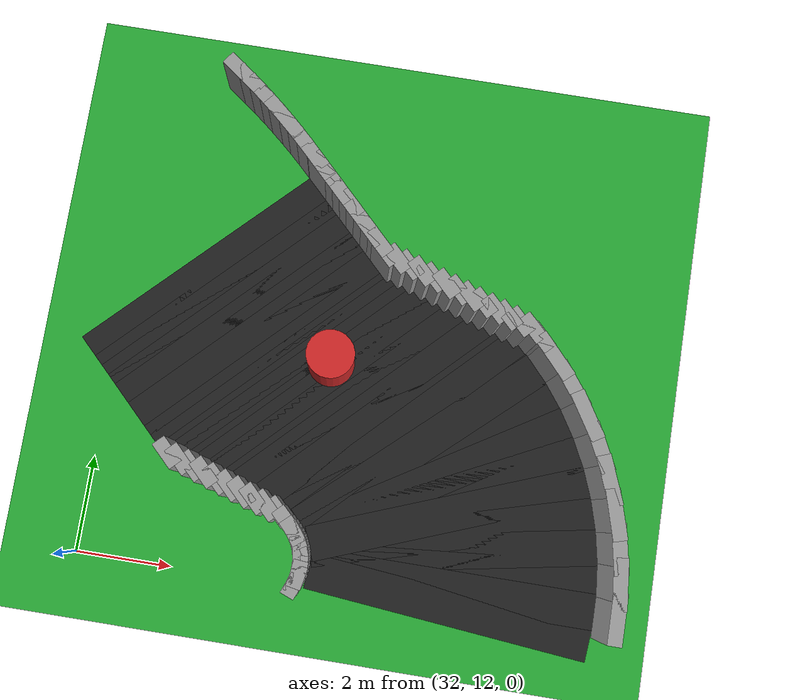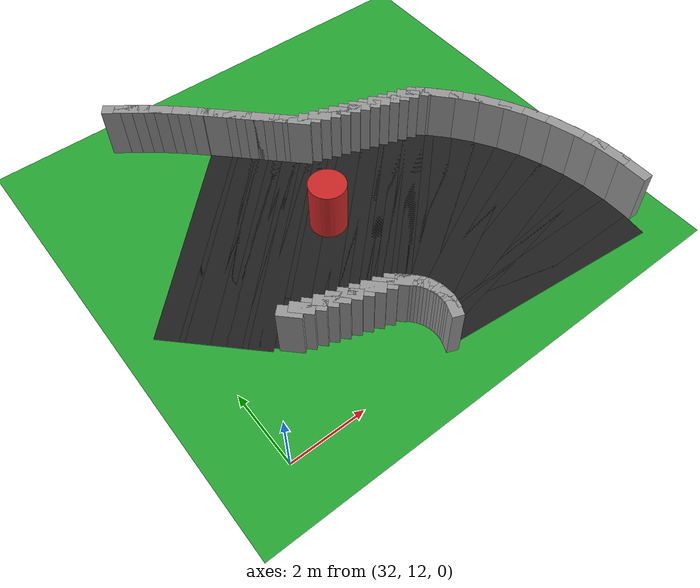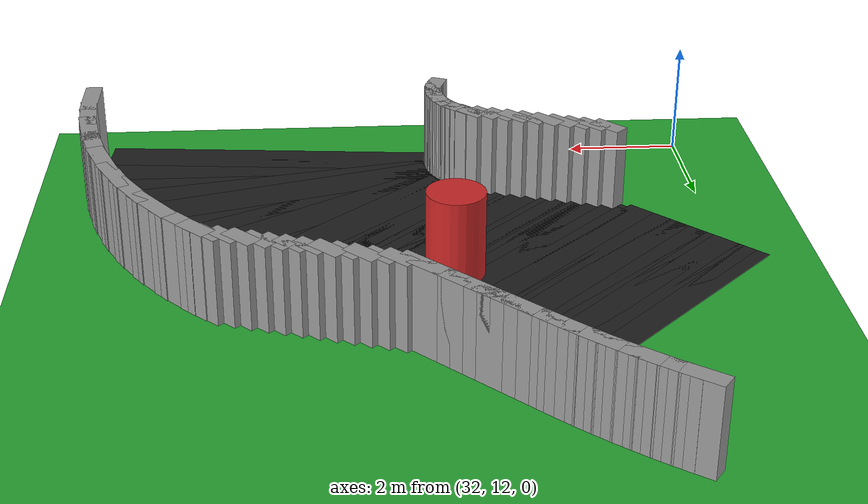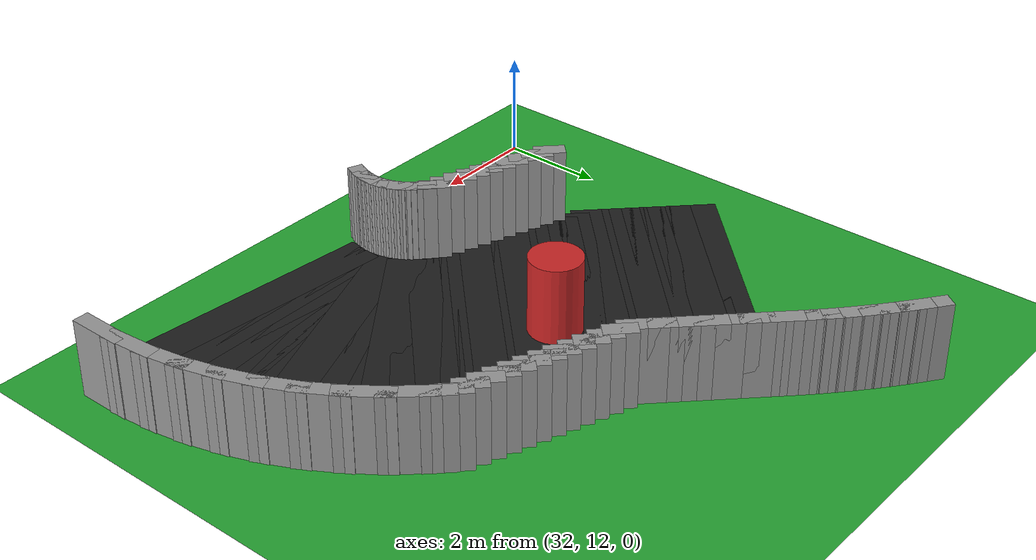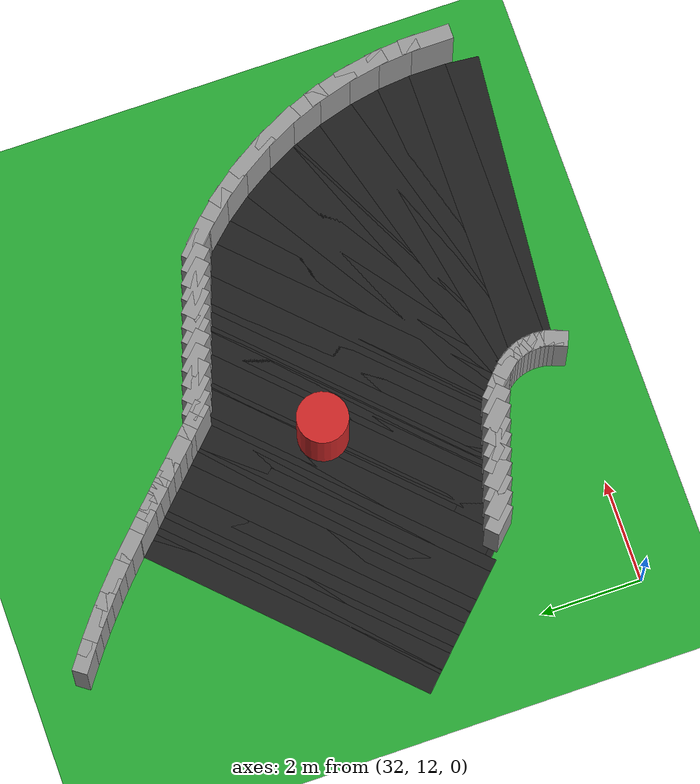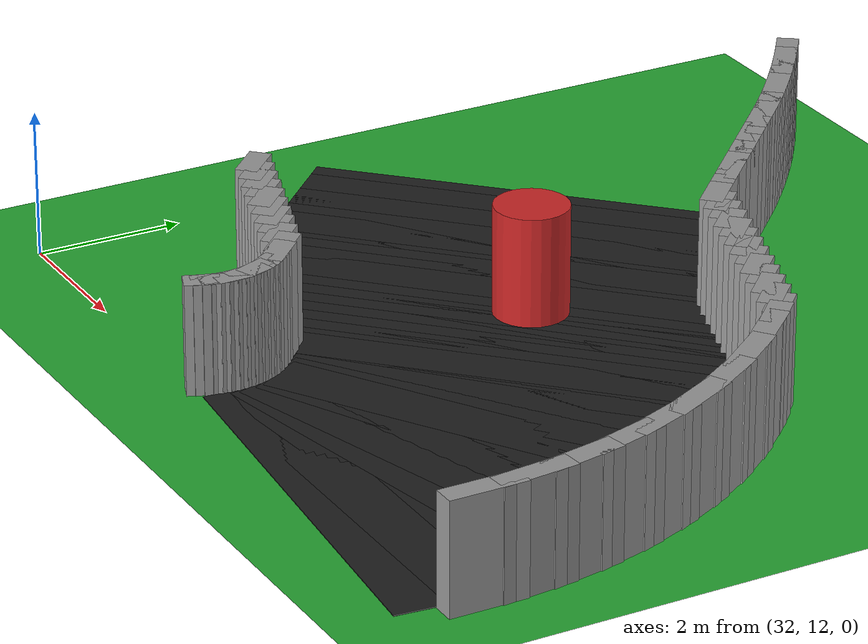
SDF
<sdf version="1.6">
 <world name="obstacle_asymturn">
  <include><uri>model://sun</uri></include>
  <model name="ground_plane">
   <static>true</static>
   <link name="link">
    <collision name="collision">
     <surface><friction><ode><mu>100</mu><mu2>50</mu2></ode></friction></surface>
     <geometry><plane><normal>0 0 1</normal><size>120 120</size></plane></geometry>
    </collision>
    <visual name="visual">
     <geometry><plane><normal>0 0 1</normal><size>120 120</size></plane></geometry>
     <material>
      <script><uri>file://media/materials/scripts/gazebo.material</uri><name>Gazebo/Green</name></script>
     </material>
    </visual>
   </link>
  </model>
  <model name="curbL_170">
   <static>true</static>
   <pose>36.626 12.116 0.750 0 0 1.20120</pose>
   <link name="link">
    <collision name="collision"><geometry><box><size>0.457 0.300 1.500</size></box></geometry></collision>
    <visual name="visual">
     <geometry><box><size>0.457 0.300 1.500</size></box></geometry>
     <material>
      <script><uri>file://media/materials/scripts/gazebo.material</uri><name>Gazebo/Grey</name></script>
     </material>
    </visual>
   </link>
  </model>
  <model name="curbL_171">
   <static>true</static>
   <pose>36.656 12.208 0.750 0 0 1.29360</pose>
   <link name="link">
    <collision name="collision"><geometry><box><size>0.457 0.300 1.500</size></box></geometry></collision>
    <visual name="visual">
     <geometry><box><size>0.457 0.300 1.500</size></box></geometry>
     <material>
      <script><uri>file://media/materials/scripts/gazebo.material</uri><name>Gazebo/Grey</name></script>
     </material>
    </visual>
   </link>
  </model>
  <model name="curbL_172">
   <static>true</static>
   <pose>36.679 12.303 0.750 0 0 1.38600</pose>
   <link name="link">
    <collision name="collision"><geometry><box><size>0.457 0.300 1.500</size></box></geometry></collision>
    <visual name="visual">
     <geometry><box><size>0.457 0.300 1.500</size></box></geometry>
     <material>
      <script><uri>file://media/materials/scripts/gazebo.material</uri><name>Gazebo/Grey</name></script>
     </material>
    </visual>
   </link>
  </model>
  <model name="asphalt_173">
   <static>true</static>
   <pose>39.825 12.109 0.005 0 0 1.47840</pose>
   <link name="link">
    <visual name="visual">
     <geometry><box><size>0.748 6.000 0.010</size></box></geometry>
     <material>
      <script><uri>file://media/materials/scripts/gazebo.material</uri><name>Gazebo/Black</name></script>
     </material>
    </visual>
   </link>
  </model>
  <model name="curbL_173">
   <static>true</static>
   <pose>36.692 12.399 0.750 0 0 1.47840</pose>
   <link name="link">
    <collision name="collision"><geometry><box><size>0.457 0.300 1.500</size></box></geometry></collision>
    <visual name="visual">
     <geometry><box><size>0.457 0.300 1.500</size></box></geometry>
     <material>
      <script><uri>file://media/materials/scripts/gazebo.material</uri><name>Gazebo/Grey</name></script>
     </material>
    </visual>
   </link>
  </model>
  <model name="asphalt_174">
   <static>true</static>
   <pose>39.843 12.496 0.005 0 0 1.57080</pose>
   <link name="link">
    <visual name="visual">
     <geometry><box><size>0.748 6.000 0.010</size></box></geometry>
     <material>
      <script><uri>file://media/materials/scripts/gazebo.material</uri><name>Gazebo/Black</name></script>
     </material>
    </visual>
   </link>
  </model>
  <model name="curbL_174">
   <static>true</static>
   <pose>36.696 12.496 0.750 0 0 1.57080</pose>
   <link name="link">
    <collision name="collision"><geometry><box><size>0.457 0.300 1.500</size></box></geometry></collision>
    <visual name="visual">
     <geometry><box><size>0.457 0.300 1.500</size></box></geometry>
     <material>
      <script><uri>file://media/materials/scripts/gazebo.material</uri><name>Gazebo/Grey</name></script>
     </material>
    </visual>
   </link>
  </model>
  <model name="curbR_174">
   <static>true</static>
   <pose>42.990 12.496 0.750 0 0 1.57080</pose>
   <link name="link">
    <collision name="collision"><geometry><box><size>1.039 0.300 1.500</size></box></geometry></collision>
    <visual name="visual">
     <geometry><box><size>1.039 0.300 1.500</size></box></geometry>
     <material>
      <script><uri>file://media/materials/scripts/gazebo.material</uri><name>Gazebo/Grey</name></script>
     </material>
    </visual>
   </link>
  </model>
  <model name="asphalt_175">
   <static>true</static>
   <pose>39.825 12.883 0.005 0 0 1.66320</pose>
   <link name="link">
    <visual name="visual">
     <geometry><box><size>0.748 6.000 0.010</size></box></geometry>
     <material>
      <script><uri>file://media/materials/scripts/gazebo.material</uri><name>Gazebo/Black</name></script>
     </material>
    </visual>
   </link>
  </model>
  <model name="curbL_175">
   <static>true</static>
   <pose>36.692 12.593 0.750 0 0 1.66320</pose>
   <link name="link">
    <collision name="collision"><geometry><box><size>0.457 0.300 1.500</size></box></geometry></collision>
    <visual name="visual">
     <geometry><box><size>0.457 0.300 1.500</size></box></geometry>
     <material>
      <script><uri>file://media/materials/scripts/gazebo.material</uri><name>Gazebo/Grey</name></script>
     </material>
    </visual>
   </link>
  </model>
  <model name="curbR_175">
   <static>true</static>
   <pose>42.958 13.173 0.750 0 0 1.66320</pose>
   <link name="link">
    <collision name="collision"><geometry><box><size>1.039 0.300 1.500</size></box></geometry></collision>
    <visual name="visual">
     <geometry><box><size>1.039 0.300 1.500</size></box></geometry>
     <material>
      <script><uri>file://media/materials/scripts/gazebo.material</uri><name>Gazebo/Grey</name></script>
     </material>
    </visual>
   </link>
  </model>
  <model name="asphalt_176">
   <static>true</static>
   <pose>39.772 13.267 0.005 0 0 1.75560</pose>
   <link name="link">
    <visual name="visual">
     <geometry><box><size>0.748 6.000 0.010</size></box></geometry>
     <material>
      <script><uri>file://media/materials/scripts/gazebo.material</uri><name>Gazebo/Black</name></script>
     </material>
    </visual>
   </link>
  </model>
  <model name="curbL_176">
   <static>true</static>
   <pose>36.679 12.689 0.750 0 0 1.75560</pose>
   <link name="link">
    <collision name="collision"><geometry><box><size>0.457 0.300 1.500</size></box></geometry></collision>
    <visual name="visual">
     <geometry><box><size>0.457 0.300 1.500</size></box></geometry>
     <material>
      <script><uri>file://media/materials/scripts/gazebo.material</uri><name>Gazebo/Grey</name></script>
     </material>
    </visual>
   </link>
  </model>
  <model name="curbR_176">
   <static>true</static>
   <pose>42.865 13.845 0.750 0 0 1.75560</pose>
   <link name="link">
    <collision name="collision"><geometry><box><size>1.039 0.300 1.500</size></box></geometry></collision>
    <visual name="visual">
     <geometry><box><size>1.039 0.300 1.500</size></box></geometry>
     <material>
      <script><uri>file://media/materials/scripts/gazebo.material</uri><name>Gazebo/Grey</name></script>
     </material>
    </visual>
   </link>
  </model>
  <model name="asphalt_177">
   <static>true</static>
   <pose>39.683 13.644 0.005 0 0 1.84800</pose>
   <link name="link">
    <visual name="visual">
     <geometry><box><size>0.748 6.000 0.010</size></box></geometry>
     <material>
      <script><uri>file://media/materials/scripts/gazebo.material</uri><name>Gazebo/Black</name></script>
     </material>
    </visual>
   </link>
  </model>
  <model name="curbL_177">
   <static>true</static>
   <pose>36.656 12.783 0.750 0 0 1.84800</pose>
   <link name="link">
    <collision name="collision"><geometry><box><size>0.457 0.300 1.500</size></box></geometry></collision>
    <visual name="visual">
     <geometry><box><size>0.457 0.300 1.500</size></box></geometry>
     <material>
      <script><uri>file://media/materials/scripts/gazebo.material</uri><name>Gazebo/Grey</name></script>
     </material>
    </visual>
   </link>
  </model>
  <model name="curbR_177">
   <static>true</static>
   <pose>42.709 14.505 0.750 0 0 1.84800</pose>
   <link name="link">
    <collision name="collision"><geometry><box><size>1.039 0.300 1.500</size></box></geometry></collision>
    <visual name="visual">
     <geometry><box><size>1.039 0.300 1.500</size></box></geometry>
     <material>
      <script><uri>file://media/materials/scripts/gazebo.material</uri><name>Gazebo/Grey</name></script>
     </material>
    </visual>
   </link>
  </model>
  <model name="asphalt_178">
   <static>true</static>
   <pose>39.560 14.012 0.005 0 0 1.94040</pose>
   <link name="link">
    <visual name="visual">
     <geometry><box><size>0.748 6.000 0.010</size></box></geometry>
     <material>
      <script><uri>file://media/materials/scripts/gazebo.material</uri><name>Gazebo/Black</name></script>
     </material>
    </visual>
   </link>
  </model>
  <model name="curbL_178">
   <static>true</static>
   <pose>36.626 12.875 0.750 0 0 1.94040</pose>
   <link name="link">
    <collision name="collision"><geometry><box><size>0.457 0.300 1.500</size></box></geometry></collision>
    <visual name="visual">
     <geometry><box><size>0.457 0.300 1.500</size></box></geometry>
     <material>
      <script><uri>file://media/materials/scripts/gazebo.material</uri><name>Gazebo/Grey</name></script>
     </material>
    </visual>
   </link>
  </model>
  <model name="curbR_178">
   <static>true</static>
   <pose>42.494 15.148 0.750 0 0 1.94040</pose>
   <link name="link">
    <collision name="collision"><geometry><box><size>1.039 0.300 1.500</size></box></geometry></collision>
    <visual name="visual">
     <geometry><box><size>1.039 0.300 1.500</size></box></geometry>
     <material>
      <script><uri>file://media/materials/scripts/gazebo.material</uri><name>Gazebo/Grey</name></script>
     </material>
    </visual>
   </link>
  </model>
  <model name="asphalt_179">
   <static>true</static>
   <pose>39.403 14.366 0.005 0 0 2.03280</pose>
   <link name="link">
    <visual name="visual">
     <geometry><box><size>0.748 6.000 0.010</size></box></geometry>
     <material>
      <script><uri>file://media/materials/scripts/gazebo.material</uri><name>Gazebo/Black</name></script>
     </material>
    </visual>
   </link>
  </model>
  <model name="curbL_179">
   <static>true</static>
   <pose>36.586 12.964 0.750 0 0 2.03280</pose>
   <link name="link">
    <collision name="collision"><geometry><box><size>0.457 0.300 1.500</size></box></geometry></collision>
    <visual name="visual">
     <geometry><box><size>0.457 0.300 1.500</size></box></geometry>
     <material>
      <script><uri>file://media/materials/scripts/gazebo.material</uri><name>Gazebo/Grey</name></script>
     </material>
    </visual>
   </link>
  </model>
  <model name="curbR_179">
   <static>true</static>
   <pose>42.220 15.769 0.750 0 0 2.03280</pose>
   <link name="link">
    <collision name="collision"><geometry><box><size>1.039 0.300 1.500</size></box></geometry></collision>
    <visual name="visual">
     <geometry><box><size>1.039 0.300 1.500</size></box></geometry>
     <material>
      <script><uri>file://media/materials/scripts/gazebo.material</uri><name>Gazebo/Grey</name></script>
     </material>
    </visual>
   </link>
  </model>
  <model name="asphalt_180">
   <static>true</static>
   <pose>39.215 14.705 0.005 0 0 2.12520</pose>
   <link name="link">
    <visual name="visual">
     <geometry><box><size>0.748 6.000 0.010</size></box></geometry>
     <material>
      <script><uri>file://media/materials/scripts/gazebo.material</uri><name>Gazebo/Black</name></script>
     </material>
    </visual>
   </link>
  </model>
  <model name="curbL_180">
   <static>true</static>
   <pose>36.539 13.048 0.750 0 0 2.12520</pose>
   <link name="link">
    <collision name="collision"><geometry><box><size>0.457 0.300 1.500</size></box></geometry></collision>
    <visual name="visual">
     <geometry><box><size>0.457 0.300 1.500</size></box></geometry>
     <material>
      <script><uri>file://media/materials/scripts/gazebo.material</uri><name>Gazebo/Grey</name></script>
     </material>
    </visual>
   </link>
  </model>
  <model name="curbR_180">
   <static>true</static>
   <pose>41.890 16.361 0.750 0 0 2.12520</pose>
   <link name="link">
    <collision name="collision"><geometry><box><size>1.039 0.300 1.500</size></box></geometry></collision>
    <visual name="visual">
     <geometry><box><size>1.039 0.300 1.500</size></box></geometry>
     <material>
      <script><uri>file://media/materials/scripts/gazebo.material</uri><name>Gazebo/Grey</name></script>
     </material>
    </visual>
   </link>
  </model>
  <model name="asphalt_181">
   <static>true</static>
   <pose>38.995 15.025 0.005 0 0 2.21759</pose>
   <link name="link">
    <visual name="visual">
     <geometry><box><size>0.748 6.000 0.010</size></box></geometry>
     <material>
      <script><uri>file://media/materials/scripts/gazebo.material</uri><name>Gazebo/Black</name></script>
     </material>
    </visual>
   </link>
  </model>
  <model name="curbL_181">
   <static>true</static>
   <pose>36.484 13.128 0.750 0 0 2.21759</pose>
   <link name="link">
    <collision name="collision"><geometry><box><size>0.457 0.300 1.500</size></box></geometry></collision>
    <visual name="visual">
     <geometry><box><size>0.457 0.300 1.500</size></box></geometry>
     <material>
      <script><uri>file://media/materials/scripts/gazebo.material</uri><name>Gazebo/Grey</name></script>
     </material>
    </visual>
   </link>
  </model>
  <model name="curbR_181">
   <static>true</static>
   <pose>41.507 16.921 0.750 0 0 2.21759</pose>
   <link name="link">
    <collision name="collision"><geometry><box><size>1.039 0.300 1.500</size></box></geometry></collision>
    <visual name="visual">
     <geometry><box><size>1.039 0.300 1.500</size></box></geometry>
     <material>
      <script><uri>file://media/materials/scripts/gazebo.material</uri><name>Gazebo/Grey</name></script>
     </material>
    </visual>
   </link>
  </model>
  <model name="asphalt_182">
   <static>true</static>
   <pose>38.748 15.323 0.005 0 0 2.30999</pose>
   <link name="link">
    <visual name="visual">
     <geometry><box><size>0.748 6.000 0.010</size></box></geometry>
     <material>
      <script><uri>file://media/materials/scripts/gazebo.material</uri><name>Gazebo/Black</name></script>
     </material>
    </visual>
   </link>
  </model>
  <model name="curbL_182">
   <static>true</static>
   <pose>36.422 13.203 0.750 0 0 2.30999</pose>
   <link name="link">
    <collision name="collision"><geometry><box><size>0.457 0.300 1.500</size></box></geometry></collision>
    <visual name="visual">
     <geometry><box><size>0.457 0.300 1.500</size></box></geometry>
     <material>
      <script><uri>file://media/materials/scripts/gazebo.material</uri><name>Gazebo/Grey</name></script>
     </material>
    </visual>
   </link>
  </model>
  <model name="curbR_182">
   <static>true</static>
   <pose>41.073 17.443 0.750 0 0 2.30999</pose>
   <link name="link">
    <collision name="collision"><geometry><box><size>1.039 0.300 1.500</size></box></geometry></collision>
    <visual name="visual">
     <geometry><box><size>1.039 0.300 1.500</size></box></geometry>
     <material>
      <script><uri>file://media/materials/scripts/gazebo.material</uri><name>Gazebo/Grey</name></script>
     </material>
    </visual>
   </link>
  </model>
  <model name="asphalt_183">
   <static>true</static>
   <pose>38.529 15.555 0.005 0 0 2.35619</pose>
   <link name="link">
    <visual name="visual">
     <geometry><box><size>0.610 6.000 0.010</size></box></geometry>
     <material>
      <script><uri>file://media/materials/scripts/gazebo.material</uri><name>Gazebo/Black</name></script>
     </material>
    </visual>
   </link>
  </model>
  <model name="curbL_183">
   <static>true</static>
   <pose>36.301 13.327 0.750 0 0 2.35619</pose>
   <link name="link">
    <collision name="collision"><geometry><box><size>0.610 0.300 1.500</size></box></geometry></collision>
    <visual name="visual">
     <geometry><box><size>0.610 0.300 1.500</size></box></geometry>
     <material>
      <script><uri>file://media/materials/scripts/gazebo.material</uri><name>Gazebo/Grey</name></script>
     </material>
    </visual>
   </link>
  </model>
  <model name="curbR_183">
   <static>true</static>
   <pose>40.756 17.782 0.750 0 0 2.35619</pose>
   <link name="link">
    <collision name="collision"><geometry><box><size>0.610 0.300 1.500</size></box></geometry></collision>
    <visual name="visual">
     <geometry><box><size>0.610 0.300 1.500</size></box></geometry>
     <material>
      <script><uri>file://media/materials/scripts/gazebo.material</uri><name>Gazebo/Grey</name></script>
     </material>
    </visual>
   </link>
  </model>
  <model name="asphalt_184">
   <static>true</static>
   <pose>38.338 15.717 0.005 0 0 2.35619</pose>
   <link name="link">
    <visual name="visual">
     <geometry><box><size>0.610 6.000 0.010</size></box></geometry>
     <material>
      <script><uri>file://media/materials/scripts/gazebo.material</uri><name>Gazebo/Black</name></script>
     </material>
    </visual>
   </link>
  </model>
  <model name="curbL_184">
   <static>true</static>
   <pose>36.110 13.490 0.750 0 0 2.35619</pose>
   <link name="link">
    <collision name="collision"><geometry><box><size>0.610 0.300 1.500</size></box></geometry></collision>
    <visual name="visual">
     <geometry><box><size>0.610 0.300 1.500</size></box></geometry>
     <material>
      <script><uri>file://media/materials/scripts/gazebo.material</uri><name>Gazebo/Grey</name></script>
     </material>
    </visual>
   </link>
  </model>
  <model name="curbR_184">
   <static>true</static>
   <pose>40.565 17.944 0.750 0 0 2.35619</pose>
   <link name="link">
    <collision name="collision"><geometry><box><size>0.610 0.300 1.500</size></box></geometry></collision>
    <visual name="visual">
     <geometry><box><size>0.610 0.300 1.500</size></box></geometry>
     <material>
      <script><uri>file://media/materials/scripts/gazebo.material</uri><name>Gazebo/Grey</name></script>
     </material>
    </visual>
   </link>
  </model>
  <model name="asphalt_185">
   <static>true</static>
   <pose>38.072 15.805 0.005 0 0 2.35619</pose>
   <link name="link">
    <visual name="visual">
     <geometry><box><size>0.610 6.000 0.010</size></box></geometry>
     <material>
      <script><uri>file://media/materials/scripts/gazebo.material</uri><name>Gazebo/Black</name></script>
     </material>
    </visual>
   </link>
  </model>
  <model name="curbL_185">
   <static>true</static>
   <pose>35.845 13.578 0.750 0 0 2.35619</pose>
   <link name="link">
    <collision name="collision"><geometry><box><size>0.610 0.300 1.500</size></box></geometry></collision>
    <visual name="visual">
     <geometry><box><size>0.610 0.300 1.500</size></box></geometry>
     <material>
      <script><uri>file://media/materials/scripts/gazebo.material</uri><name>Gazebo/Grey</name></script>
     </material>
    </visual>
   </link>
  </model>
  <model name="curbR_185">
   <static>true</static>
   <pose>40.300 18.033 0.750 0 0 2.35619</pose>
   <link name="link">
    <collision name="collision"><geometry><box><size>0.610 0.300 1.500</size></box></geometry></collision>
    <visual name="visual">
     <geometry><box><size>0.610 0.300 1.500</size></box></geometry>
     <material>
      <script><uri>file://media/materials/scripts/gazebo.material</uri><name>Gazebo/Grey</name></script>
     </material>
    </visual>
   </link>
  </model>
  <model name="asphalt_186">
   <static>true</static>
   <pose>37.807 15.894 0.005 0 0 2.35619</pose>
   <link name="link">
    <visual name="visual">
     <geometry><box><size>0.610 6.000 0.010</size></box></geometry>
     <material>
      <script><uri>file://media/materials/scripts/gazebo.material</uri><name>Gazebo/Black</name></script>
     </material>
    </visual>
   </link>
  </model>
  <model name="curbL_186">
   <static>true</static>
   <pose>35.580 13.666 0.750 0 0 2.35619</pose>
   <link name="link">
    <collision name="collision"><geometry><box><size>0.610 0.300 1.500</size></box></geometry></collision>
    <visual name="visual">
     <geometry><box><size>0.610 0.300 1.500</size></box></geometry>
     <material>
      <script><uri>file://media/materials/scripts/gazebo.material</uri><name>Gazebo/Grey</name></script>
     </material>
    </visual>
   </link>
  </model>
  <model name="curbR_186">
   <static>true</static>
   <pose>40.035 18.121 0.750 0 0 2.35619</pose>
   <link name="link">
    <collision name="collision"><geometry><box><size>0.610 0.300 1.500</size></box></geometry></collision>
    <visual name="visual">
     <geometry><box><size>0.610 0.300 1.500</size></box></geometry>
     <material>
      <script><uri>file://media/materials/scripts/gazebo.material</uri><name>Gazebo/Grey</name></script>
     </material>
    </visual>
   </link>
  </model>
  <model name="asphalt_187">
   <static>true</static>
   <pose>37.542 15.982 0.005 0 0 2.35619</pose>
   <link name="link">
    <visual name="visual">
     <geometry><box><size>0.610 6.000 0.010</size></box></geometry>
     <material>
      <script><uri>file://media/materials/scripts/gazebo.material</uri><name>Gazebo/Black</name></script>
     </material>
    </visual>
   </link>
  </model>
  <model name="curbL_187">
   <static>true</static>
   <pose>35.315 13.755 0.750 0 0 2.35619</pose>
   <link name="link">
    <collision name="collision"><geometry><box><size>0.610 0.300 1.500</size></box></geometry></collision>
    <visual name="visual">
     <geometry><box><size>0.610 0.300 1.500</size></box></geometry>
     <material>
      <script><uri>file://media/materials/scripts/gazebo.material</uri><name>Gazebo/Grey</name></script>
     </material>
    </visual>
   </link>
  </model>
  <model name="curbR_187">
   <static>true</static>
   <pose>39.769 18.209 0.750 0 0 2.35619</pose>
   <link name="link">
    <collision name="collision"><geometry><box><size>0.610 0.300 1.500</size></box></geometry></collision>
    <visual name="visual">
     <geometry><box><size>0.610 0.300 1.500</size></box></geometry>
     <material>
      <script><uri>file://media/materials/scripts/gazebo.material</uri><name>Gazebo/Grey</name></script>
     </material>
    </visual>
   </link>
  </model>
  <model name="asphalt_188">
   <static>true</static>
   <pose>37.277 16.070 0.005 0 0 2.35619</pose>
   <link name="link">
    <visual name="visual">
     <geometry><box><size>0.610 6.000 0.010</size></box></geometry>
     <material>
      <script><uri>file://media/materials/scripts/gazebo.material</uri><name>Gazebo/Black</name></script>
     </material>
    </visual>
   </link>
  </model>
  <model name="curbL_188">
   <static>true</static>
   <pose>35.049 13.843 0.750 0 0 2.35619</pose>
   <link name="link">
    <collision name="collision"><geometry><box><size>0.610 0.300 1.500</size></box></geometry></collision>
    <visual name="visual">
     <geometry><box><size>0.610 0.300 1.500</size></box></geometry>
     <material>
      <script><uri>file://media/materials/scripts/gazebo.material</uri><name>Gazebo/Grey</name></script>
     </material>
    </visual>
   </link>
  </model>
  <model name="curbR_188">
   <static>true</static>
   <pose>39.504 18.298 0.750 0 0 2.35619</pose>
   <link name="link">
    <collision name="collision"><geometry><box><size>0.610 0.300 1.500</size></box></geometry></collision>
    <visual name="visual">
     <geometry><box><size>0.610 0.300 1.500</size></box></geometry>
     <material>
      <script><uri>file://media/materials/scripts/gazebo.material</uri><name>Gazebo/Grey</name></script>
     </material>
    </visual>
   </link>
  </model>
  <model name="asphalt_189">
   <static>true</static>
   <pose>37.012 16.159 0.005 0 0 2.35619</pose>
   <link name="link">
    <visual name="visual">
     <geometry><box><size>0.610 6.000 0.010</size></box></geometry>
     <material>
      <script><uri>file://media/materials/scripts/gazebo.material</uri><name>Gazebo/Black</name></script>
     </material>
    </visual>
   </link>
  </model>
  <model name="curbL_189">
   <static>true</static>
   <pose>34.784 13.931 0.750 0 0 2.35619</pose>
   <link name="link">
    <collision name="collision"><geometry><box><size>0.610 0.300 1.500</size></box></geometry></collision>
    <visual name="visual">
     <geometry><box><size>0.610 0.300 1.500</size></box></geometry>
     <material>
      <script><uri>file://media/materials/scripts/gazebo.material</uri><name>Gazebo/Grey</name></script>
     </material>
    </visual>
   </link>
  </model>
  <model name="curbR_189">
   <static>true</static>
   <pose>39.239 18.386 0.750 0 0 2.35619</pose>
   <link name="link">
    <collision name="collision"><geometry><box><size>0.610 0.300 1.500</size></box></geometry></collision>
    <visual name="visual">
     <geometry><box><size>0.610 0.300 1.500</size></box></geometry>
     <material>
      <script><uri>file://media/materials/scripts/gazebo.material</uri><name>Gazebo/Grey</name></script>
     </material>
    </visual>
   </link>
  </model>
  <model name="asphalt_190">
   <static>true</static>
   <pose>36.747 16.247 0.005 0 0 2.35619</pose>
   <link name="link">
    <visual name="visual">
     <geometry><box><size>0.610 6.000 0.010</size></box></geometry>
     <material>
      <script><uri>file://media/materials/scripts/gazebo.material</uri><name>Gazebo/Black</name></script>
     </material>
    </visual>
   </link>
  </model>
  <model name="curbL_190">
   <static>true</static>
   <pose>34.519 14.020 0.750 0 0 2.35619</pose>
   <link name="link">
    <collision name="collision"><geometry><box><size>0.610 0.300 1.500</size></box></geometry></collision>
    <visual name="visual">
     <geometry><box><size>0.610 0.300 1.500</size></box></geometry>
     <material>
      <script><uri>file://media/materials/scripts/gazebo.material</uri><name>Gazebo/Grey</name></script>
     </material>
    </visual>
   </link>
  </model>
  <model name="curbR_190">
   <static>true</static>
   <pose>38.974 18.475 0.750 0 0 2.35619</pose>
   <link name="link">
    <collision name="collision"><geometry><box><size>0.610 0.300 1.500</size></box></geometry></collision>
    <visual name="visual">
     <geometry><box><size>0.610 0.300 1.500</size></box></geometry>
     <material>
      <script><uri>file://media/materials/scripts/gazebo.material</uri><name>Gazebo/Grey</name></script>
     </material>
    </visual>
   </link>
  </model>
  <model name="asphalt_191">
   <static>true</static>
   <pose>36.481 16.336 0.005 0 0 2.35619</pose>
   <link name="link">
    <visual name="visual">
     <geometry><box><size>0.610 6.000 0.010</size></box></geometry>
     <material>
      <script><uri>file://media/materials/scripts/gazebo.material</uri><name>Gazebo/Black</name></script>
     </material>
    </visual>
   </link>
  </model>
  <model name="curbL_191">
   <static>true</static>
   <pose>34.254 14.108 0.750 0 0 2.35619</pose>
   <link name="link">
    <collision name="collision"><geometry><box><size>0.610 0.300 1.500</size></box></geometry></collision>
    <visual name="visual">
     <geometry><box><size>0.610 0.300 1.500</size></box></geometry>
     <material>
      <script><uri>file://media/materials/scripts/gazebo.material</uri><name>Gazebo/Grey</name></script>
     </material>
    </visual>
   </link>
  </model>
  <model name="curbR_191">
   <static>true</static>
   <pose>38.709 18.563 0.750 0 0 2.35619</pose>
   <link name="link">
    <collision name="collision"><geometry><box><size>0.610 0.300 1.500</size></box></geometry></collision>
    <visual name="visual">
     <geometry><box><size>0.610 0.300 1.500</size></box></geometry>
     <material>
      <script><uri>file://media/materials/scripts/gazebo.material</uri><name>Gazebo/Grey</name></script>
     </material>
    </visual>
   </link>
  </model>
  <model name="asphalt_192">
   <static>true</static>
   <pose>36.216 16.424 0.005 0 0 2.35619</pose>
   <link name="link">
    <visual name="visual">
     <geometry><box><size>0.610 6.000 0.010</size></box></geometry>
     <material>
      <script><uri>file://media/materials/scripts/gazebo.material</uri><name>Gazebo/Black</name></script>
     </material>
    </visual>
   </link>
  </model>
  <model name="curbL_192">
   <static>true</static>
   <pose>33.989 14.197 0.750 0 0 2.35619</pose>
   <link name="link">
    <collision name="collision"><geometry><box><size>0.610 0.300 1.500</size></box></geometry></collision>
    <visual name="visual">
     <geometry><box><size>0.610 0.300 1.500</size></box></geometry>
     <material>
      <script><uri>file://media/materials/scripts/gazebo.material</uri><name>Gazebo/Grey</name></script>
     </material>
    </visual>
   </link>
  </model>
  <model name="curbR_192">
   <static>true</static>
   <pose>38.444 18.651 0.750 0 0 2.35619</pose>
   <link name="link">
    <collision name="collision"><geometry><box><size>0.610 0.300 1.500</size></box></geometry></collision>
    <visual name="visual">
     <geometry><box><size>0.610 0.300 1.500</size></box></geometry>
     <material>
      <script><uri>file://media/materials/scripts/gazebo.material</uri><name>Gazebo/Grey</name></script>
     </material>
    </visual>
   </link>
  </model>
  <model name="asphalt_193">
   <static>true</static>
   <pose>35.951 16.512 0.005 0 0 2.35619</pose>
   <link name="link">
    <visual name="visual">
     <geometry><box><size>0.610 6.000 0.010</size></box></geometry>
     <material>
      <script><uri>file://media/materials/scripts/gazebo.material</uri><name>Gazebo/Black</name></script>
     </material>
    </visual>
   </link>
  </model>
  <model name="curbL_193">
   <static>true</static>
   <pose>33.724 14.285 0.750 0 0 2.35619</pose>
   <link name="link">
    <collision name="collision"><geometry><box><size>0.610 0.300 1.500</size></box></geometry></collision>
    <visual name="visual">
     <geometry><box><size>0.610 0.300 1.500</size></box></geometry>
     <material>
      <script><uri>file://media/materials/scripts/gazebo.material</uri><name>Gazebo/Grey</name></script>
     </material>
    </visual>
   </link>
  </model>
  <model name="curbR_193">
   <static>true</static>
   <pose>38.178 18.740 0.750 0 0 2.35619</pose>
   <link name="link">
    <collision name="collision"><geometry><box><size>0.610 0.300 1.500</size></box></geometry></collision>
    <visual name="visual">
     <geometry><box><size>0.610 0.300 1.500</size></box></geometry>
     <material>
      <script><uri>file://media/materials/scripts/gazebo.material</uri><name>Gazebo/Grey</name></script>
     </material>
    </visual>
   </link>
  </model>
  <model name="asphalt_194">
   <static>true</static>
   <pose>35.686 16.601 0.005 0 0 2.35619</pose>
   <link name="link">
    <visual name="visual">
     <geometry><box><size>0.610 6.000 0.010</size></box></geometry>
     <material>
      <script><uri>file://media/materials/scripts/gazebo.material</uri><name>Gazebo/Black</name></script>
     </material>
    </visual>
   </link>
  </model>
  <model name="curbR_194">
   <static>true</static>
   <pose>37.913 18.828 0.750 0 0 2.35619</pose>
   <link name="link">
    <collision name="collision"><geometry><box><size>0.610 0.300 1.500</size></box></geometry></collision>
    <visual name="visual">
     <geometry><box><size>0.610 0.300 1.500</size></box></geometry>
     <material>
      <script><uri>file://media/materials/scripts/gazebo.material</uri><name>Gazebo/Grey</name></script>
     </material>
    </visual>
   </link>
  </model>
  <model name="asphalt_195">
   <static>true</static>
   <pose>35.421 16.689 0.005 0 0 2.35619</pose>
   <link name="link">
    <visual name="visual">
     <geometry><box><size>0.610 6.000 0.010</size></box></geometry>
     <material>
      <script><uri>file://media/materials/scripts/gazebo.material</uri><name>Gazebo/Black</name></script>
     </material>
    </visual>
   </link>
  </model>
  <model name="curbR_195">
   <static>true</static>
   <pose>37.648 18.917 0.750 0 0 2.35619</pose>
   <link name="link">
    <collision name="collision"><geometry><box><size>0.610 0.300 1.500</size></box></geometry></collision>
    <visual name="visual">
     <geometry><box><size>0.610 0.300 1.500</size></box></geometry>
     <material>
      <script><uri>file://media/materials/scripts/gazebo.material</uri><name>Gazebo/Grey</name></script>
     </material>
    </visual>
   </link>
  </model>
  <model name="asphalt_196">
   <static>true</static>
   <pose>35.170 16.792 0.005 0 0 2.35619</pose>
   <link name="link">
    <visual name="visual">
     <geometry><box><size>0.610 6.000 0.010</size></box></geometry>
     <material>
      <script><uri>file://media/materials/scripts/gazebo.material</uri><name>Gazebo/Black</name></script>
     </material>
    </visual>
   </link>
  </model>
  <model name="curbR_196">
   <static>true</static>
   <pose>37.397 19.019 0.750 0 0 2.35619</pose>
   <link name="link">
    <collision name="collision"><geometry><box><size>0.610 0.300 1.500</size></box></geometry></collision>
    <visual name="visual">
     <geometry><box><size>0.610 0.300 1.500</size></box></geometry>
     <material>
      <script><uri>file://media/materials/scripts/gazebo.material</uri><name>Gazebo/Grey</name></script>
     </material>
    </visual>
   </link>
  </model>
  <model name="asphalt_197">
   <static>true</static>
   <pose>34.993 16.969 0.005 0 0 2.35619</pose>
   <link name="link">
    <visual name="visual">
     <geometry><box><size>0.610 6.000 0.010</size></box></geometry>
     <material>
      <script><uri>file://media/materials/scripts/gazebo.material</uri><name>Gazebo/Black</name></script>
     </material>
    </visual>
   </link>
  </model>
  <model name="curbR_197">
   <static>true</static>
   <pose>37.221 19.196 0.750 0 0 2.35619</pose>
   <link name="link">
    <collision name="collision"><geometry><box><size>0.610 0.300 1.500</size></box></geometry></collision>
    <visual name="visual">
     <geometry><box><size>0.610 0.300 1.500</size></box></geometry>
     <material>
      <script><uri>file://media/materials/scripts/gazebo.material</uri><name>Gazebo/Grey</name></script>
     </material>
    </visual>
   </link>
  </model>
  <model name="asphalt_198">
   <static>true</static>
   <pose>34.816 17.146 0.005 0 0 2.35619</pose>
   <link name="link">
    <visual name="visual">
     <geometry><box><size>0.610 6.000 0.010</size></box></geometry>
     <material>
      <script><uri>file://media/materials/scripts/gazebo.material</uri><name>Gazebo/Black</name></script>
     </material>
    </visual>
   </link>
  </model>
  <model name="curbR_198">
   <static>true</static>
   <pose>37.044 19.373 0.750 0 0 2.35619</pose>
   <link name="link">
    <collision name="collision"><geometry><box><size>0.610 0.300 1.500</size></box></geometry></collision>
    <visual name="visual">
     <geometry><box><size>0.610 0.300 1.500</size></box></geometry>
     <material>
      <script><uri>file://media/materials/scripts/gazebo.material</uri><name>Gazebo/Grey</name></script>
     </material>
    </visual>
   </link>
  </model>
  <model name="asphalt_199">
   <static>true</static>
   <pose>34.640 17.322 0.005 0 0 2.35619</pose>
   <link name="link">
    <visual name="visual">
     <geometry><box><size>0.610 6.000 0.010</size></box></geometry>
     <material>
      <script><uri>file://media/materials/scripts/gazebo.material</uri><name>Gazebo/Black</name></script>
     </material>
    </visual>
   </link>
  </model>
  <model name="curbR_199">
   <static>true</static>
   <pose>36.867 19.550 0.750 0 0 2.35619</pose>
   <link name="link">
    <collision name="collision"><geometry><box><size>0.610 0.300 1.500</size></box></geometry></collision>
    <visual name="visual">
     <geometry><box><size>0.610 0.300 1.500</size></box></geometry>
     <material>
      <script><uri>file://media/materials/scripts/gazebo.material</uri><name>Gazebo/Grey</name></script>
     </material>
    </visual>
   </link>
  </model>
  <model name="asphalt_200">
   <static>true</static>
   <pose>34.463 17.499 0.005 0 0 2.35619</pose>
   <link name="link">
    <visual name="visual">
     <geometry><box><size>0.610 6.000 0.010</size></box></geometry>
     <material>
      <script><uri>file://media/materials/scripts/gazebo.material</uri><name>Gazebo/Black</name></script>
     </material>
    </visual>
   </link>
  </model>
  <model name="curbR_200">
   <static>true</static>
   <pose>36.690 19.727 0.750 0 0 2.35619</pose>
   <link name="link">
    <collision name="collision"><geometry><box><size>0.610 0.300 1.500</size></box></geometry></collision>
    <visual name="visual">
     <geometry><box><size>0.610 0.300 1.500</size></box></geometry>
     <material>
      <script><uri>file://media/materials/scripts/gazebo.material</uri><name>Gazebo/Grey</name></script>
     </material>
    </visual>
   </link>
  </model>
  <model name="asphalt_201">
   <static>true</static>
   <pose>34.286 17.676 0.005 0 0 2.35619</pose>
   <link name="link">
    <visual name="visual">
     <geometry><box><size>0.610 6.000 0.010</size></box></geometry>
     <material>
      <script><uri>file://media/materials/scripts/gazebo.material</uri><name>Gazebo/Black</name></script>
     </material>
    </visual>
   </link>
  </model>
  <model name="curbR_201">
   <static>true</static>
   <pose>36.514 19.903 0.750 0 0 2.35619</pose>
   <link name="link">
    <collision name="collision"><geometry><box><size>0.610 0.300 1.500</size></box></geometry></collision>
    <visual name="visual">
     <geometry><box><size>0.610 0.300 1.500</size></box></geometry>
     <material>
      <script><uri>file://media/materials/scripts/gazebo.material</uri><name>Gazebo/Grey</name></script>
     </material>
    </visual>
   </link>
  </model>
  <model name="asphalt_202">
   <static>true</static>
   <pose>34.109 17.853 0.005 0 0 2.35619</pose>
   <link name="link">
    <visual name="visual">
     <geometry><box><size>0.610 6.000 0.010</size></box></geometry>
     <material>
      <script><uri>file://media/materials/scripts/gazebo.material</uri><name>Gazebo/Black</name></script>
     </material>
    </visual>
   </link>
  </model>
  <model name="curbR_202">
   <static>true</static>
   <pose>36.337 20.080 0.750 0 0 2.35619</pose>
   <link name="link">
    <collision name="collision"><geometry><box><size>0.610 0.300 1.500</size></box></geometry></collision>
    <visual name="visual">
     <geometry><box><size>0.610 0.300 1.500</size></box></geometry>
     <material>
      <script><uri>file://media/materials/scripts/gazebo.material</uri><name>Gazebo/Grey</name></script>
     </material>
    </visual>
   </link>
  </model>
  <model name="asphalt_203">
   <static>true</static>
   <pose>33.933 18.030 0.005 0 0 2.35619</pose>
   <link name="link">
    <visual name="visual">
     <geometry><box><size>0.610 6.000 0.010</size></box></geometry>
     <material>
      <script><uri>file://media/materials/scripts/gazebo.material</uri><name>Gazebo/Black</name></script>
     </material>
    </visual>
   </link>
  </model>
  <model name="curbR_203">
   <static>true</static>
   <pose>36.160 20.257 0.750 0 0 2.35619</pose>
   <link name="link">
    <collision name="collision"><geometry><box><size>0.610 0.300 1.500</size></box></geometry></collision>
    <visual name="visual">
     <geometry><box><size>0.610 0.300 1.500</size></box></geometry>
     <material>
      <script><uri>file://media/materials/scripts/gazebo.material</uri><name>Gazebo/Grey</name></script>
     </material>
    </visual>
   </link>
  </model>
  <model name="asphalt_204">
   <static>true</static>
   <pose>33.756 18.206 0.005 0 0 2.35619</pose>
   <link name="link">
    <visual name="visual">
     <geometry><box><size>0.610 6.000 0.010</size></box></geometry>
     <material>
      <script><uri>file://media/materials/scripts/gazebo.material</uri><name>Gazebo/Black</name></script>
     </material>
    </visual>
   </link>
  </model>
  <model name="curbR_204">
   <static>true</static>
   <pose>35.983 20.434 0.750 0 0 2.35619</pose>
   <link name="link">
    <collision name="collision"><geometry><box><size>0.610 0.300 1.500</size></box></geometry></collision>
    <visual name="visual">
     <geometry><box><size>0.610 0.300 1.500</size></box></geometry>
     <material>
      <script><uri>file://media/materials/scripts/gazebo.material</uri><name>Gazebo/Grey</name></script>
     </material>
    </visual>
   </link>
  </model>
  <model name="asphalt_205">
   <static>true</static>
   <pose>33.579 18.383 0.005 0 0 2.35619</pose>
   <link name="link">
    <visual name="visual">
     <geometry><box><size>0.610 6.000 0.010</size></box></geometry>
     <material>
      <script><uri>file://media/materials/scripts/gazebo.material</uri><name>Gazebo/Black</name></script>
     </material>
    </visual>
   </link>
  </model>
  <model name="curbR_205">
   <static>true</static>
   <pose>35.806 20.610 0.750 0 0 2.35619</pose>
   <link name="link">
    <collision name="collision"><geometry><box><size>0.610 0.300 1.500</size></box></geometry></collision>
    <visual name="visual">
     <geometry><box><size>0.610 0.300 1.500</size></box></geometry>
     <material>
      <script><uri>file://media/materials/scripts/gazebo.material</uri><name>Gazebo/Grey</name></script>
     </material>
    </visual>
   </link>
  </model>
  <model name="curbR_206">
   <static>true</static>
   <pose>35.630 20.787 0.750 0 0 2.35619</pose>
   <link name="link">
    <collision name="collision"><geometry><box><size>0.610 0.300 1.500</size></box></geometry></collision>
    <visual name="visual">
     <geometry><box><size>0.610 0.300 1.500</size></box></geometry>
     <material>
      <script><uri>file://media/materials/scripts/gazebo.material</uri><name>Gazebo/Grey</name></script>
     </material>
    </visual>
   </link>
  </model>
  <model name="curbR_207">
   <static>true</static>
   <pose>35.429 20.985 0.750 0 0 2.36653</pose>
   <link name="link">
    <collision name="collision"><geometry><box><size>0.673 0.300 1.500</size></box></geometry></collision>
    <visual name="visual">
     <geometry><box><size>0.673 0.300 1.500</size></box></geometry>
     <material>
      <script><uri>file://media/materials/scripts/gazebo.material</uri><name>Gazebo/Grey</name></script>
     </material>
    </visual>
   </link>
  </model>
  <model name="curbR_208">
   <static>true</static>
   <pose>35.203 21.202 0.750 0 0 2.38720</pose>
   <link name="link">
    <collision name="collision"><geometry><box><size>0.673 0.300 1.500</size></box></geometry></collision>
    <visual name="visual">
     <geometry><box><size>0.673 0.300 1.500</size></box></geometry>
     <material>
      <script><uri>file://media/materials/scripts/gazebo.material</uri><name>Gazebo/Grey</name></script>
     </material>
    </visual>
   </link>
  </model>
  <model name="curbR_209">
   <static>true</static>
   <pose>34.973 21.414 0.750 0 0 2.40787</pose>
   <link name="link">
    <collision name="collision"><geometry><box><size>0.673 0.300 1.500</size></box></geometry></collision>
    <visual name="visual">
     <geometry><box><size>0.673 0.300 1.500</size></box></geometry>
     <material>
      <script><uri>file://media/materials/scripts/gazebo.material</uri><name>Gazebo/Grey</name></script>
     </material>
    </visual>
   </link>
  </model>
  <model name="curbR_210">
   <static>true</static>
   <pose>34.738 21.621 0.750 0 0 2.42853</pose>
   <link name="link">
    <collision name="collision"><geometry><box><size>0.673 0.300 1.500</size></box></geometry></collision>
    <visual name="visual">
     <geometry><box><size>0.673 0.300 1.500</size></box></geometry>
     <material>
      <script><uri>file://media/materials/scripts/gazebo.material</uri><name>Gazebo/Grey</name></script>
     </material>
    </visual>
   </link>
  </model>
  <model name="curbR_211">
   <static>true</static>
   <pose>34.499 21.824 0.750 0 0 2.44920</pose>
   <link name="link">
    <collision name="collision"><geometry><box><size>0.673 0.300 1.500</size></box></geometry></collision>
    <visual name="visual">
     <geometry><box><size>0.673 0.300 1.500</size></box></geometry>
     <material>
      <script><uri>file://media/materials/scripts/gazebo.material</uri><name>Gazebo/Grey</name></script>
     </material>
    </visual>
   </link>
  </model>
  <model name="curbR_212">
   <static>true</static>
   <pose>34.256 22.021 0.750 0 0 2.46987</pose>
   <link name="link">
    <collision name="collision"><geometry><box><size>0.673 0.300 1.500</size></box></geometry></collision>
    <visual name="visual">
     <geometry><box><size>0.673 0.300 1.500</size></box></geometry>
     <material>
      <script><uri>file://media/materials/scripts/gazebo.material</uri><name>Gazebo/Grey</name></script>
     </material>
    </visual>
   </link>
  </model>
  <model name="curbR_213">
   <static>true</static>
   <pose>34.009 22.213 0.750 0 0 2.49054</pose>
   <link name="link">
    <collision name="collision"><geometry><box><size>0.673 0.300 1.500</size></box></geometry></collision>
    <visual name="visual">
     <geometry><box><size>0.673 0.300 1.500</size></box></geometry>
     <material>
      <script><uri>file://media/materials/scripts/gazebo.material</uri><name>Gazebo/Grey</name></script>
     </material>
    </visual>
   </link>
  </model>
  <model name="curbR_214">
   <static>true</static>
   <pose>33.758 22.400 0.750 0 0 2.51121</pose>
   <link name="link">
    <collision name="collision"><geometry><box><size>0.673 0.300 1.500</size></box></geometry></collision>
    <visual name="visual">
     <geometry><box><size>0.673 0.300 1.500</size></box></geometry>
     <material>
      <script><uri>file://media/materials/scripts/gazebo.material</uri><name>Gazebo/Grey</name></script>
     </material>
    </visual>
   </link>
  </model>
  <model name="obs_5">
   <static>true</static>
   <pose>36.613 16.763 0.750 0 0 0</pose>
   <link name="link">
    <collision name="collision">
     <geometry><cylinder><radius>0.500</radius><length>1.500</length></cylinder></geometry>
    </collision>
    <visual name="visual">
     <geometry><cylinder><radius>0.500</radius><length>1.500</length></cylinder></geometry>
     <material>
      <script><uri>file://media/materials/scripts/gazebo.material</uri><name>Gazebo/Red</name></script>
     </material>
    </visual>
   </link>
  </model>
 </world>
</sdf>
